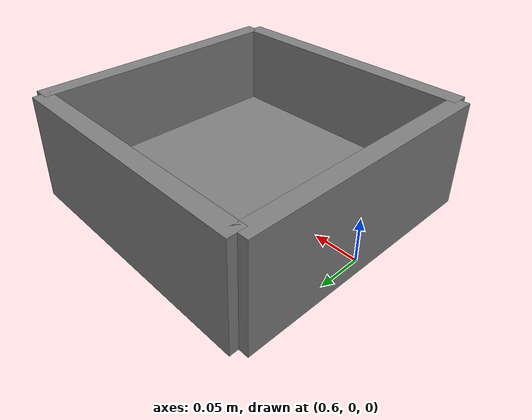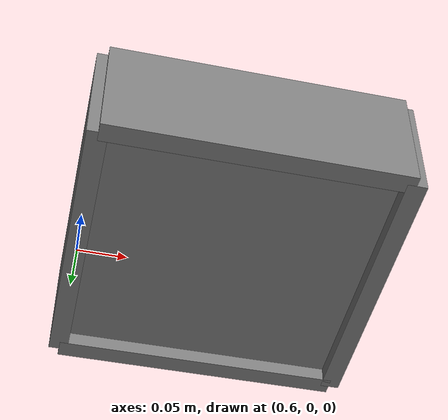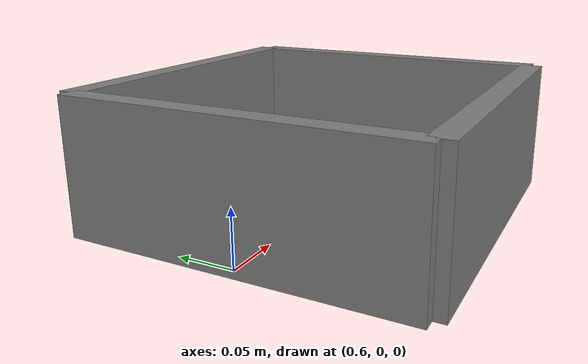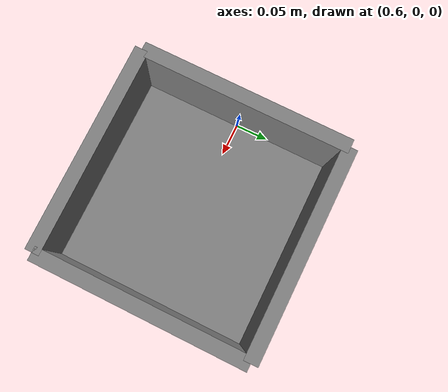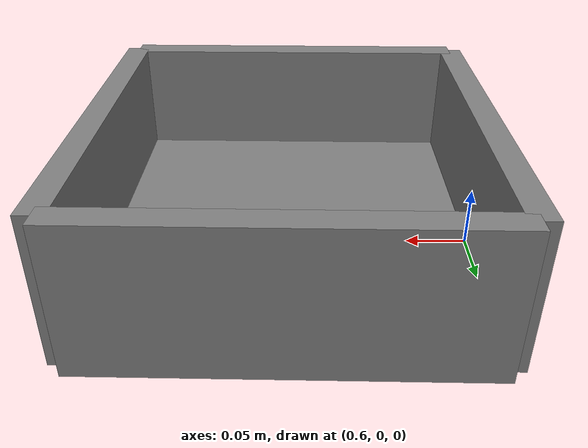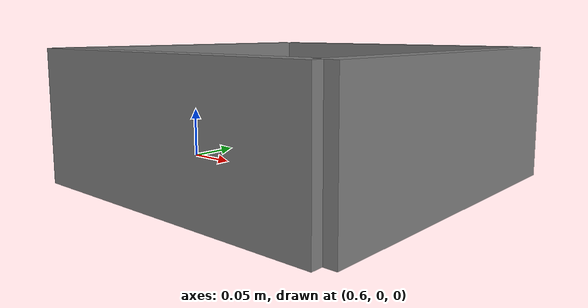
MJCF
<mujoco model="tray">
  <worldbody>
         <body name="tray_body" pos="0.75 0.0 0.0" quat="0.0 0 0 0">
             <geom mass="2000" pos="0 0 0.02" size="0.15 0.15 0.005" type="box" />
             <geom pos="0 0.151 0.06" size="0.15 0.01 0.06" type="box" />
             <geom pos="0 -0.151 0.06" size="0.15 0.01 0.06" type="box" />
             <geom pos="0.151 0 0.06" size="0.01 0.151 0.06" type="box" />
             <geom pos="-0.151 0 0.06" size="0.01 0.151 0.06" type="box" />
         </body>
  </worldbody>
</mujoco>
